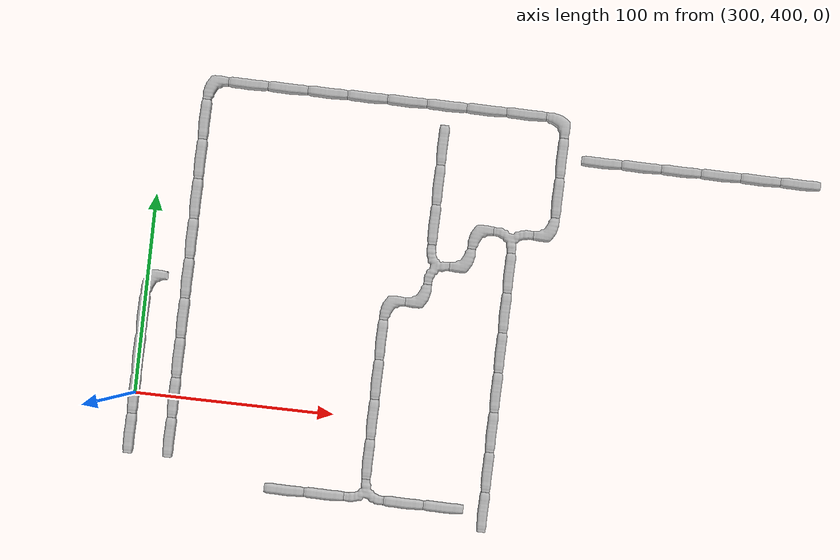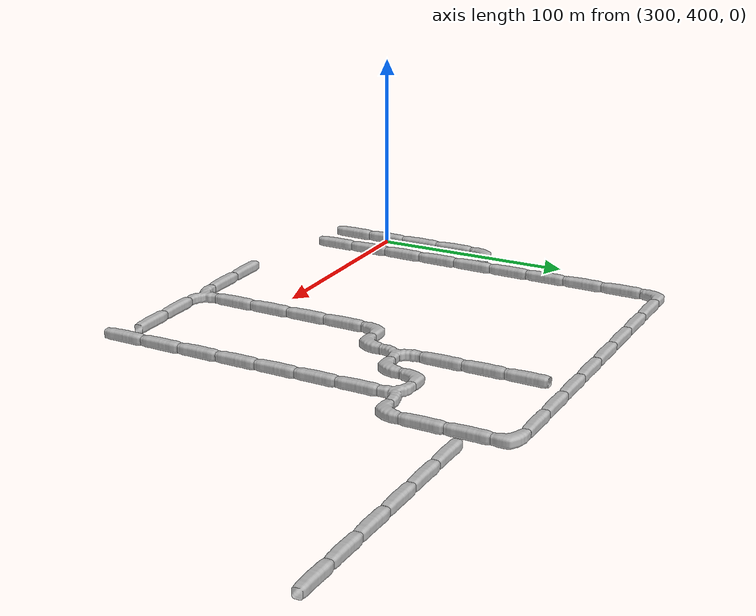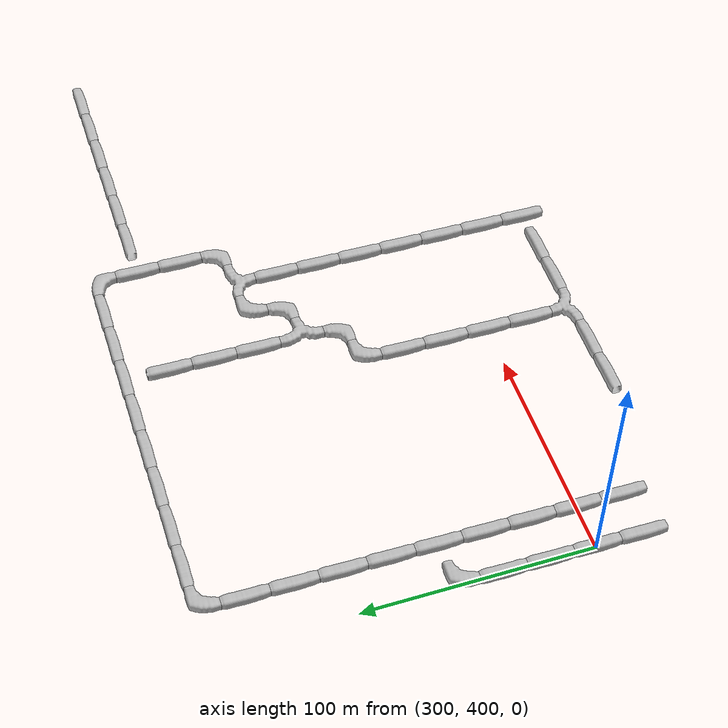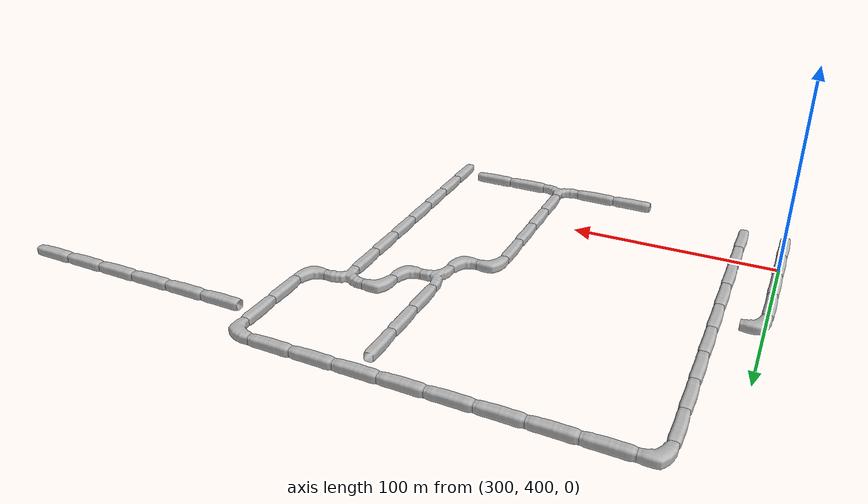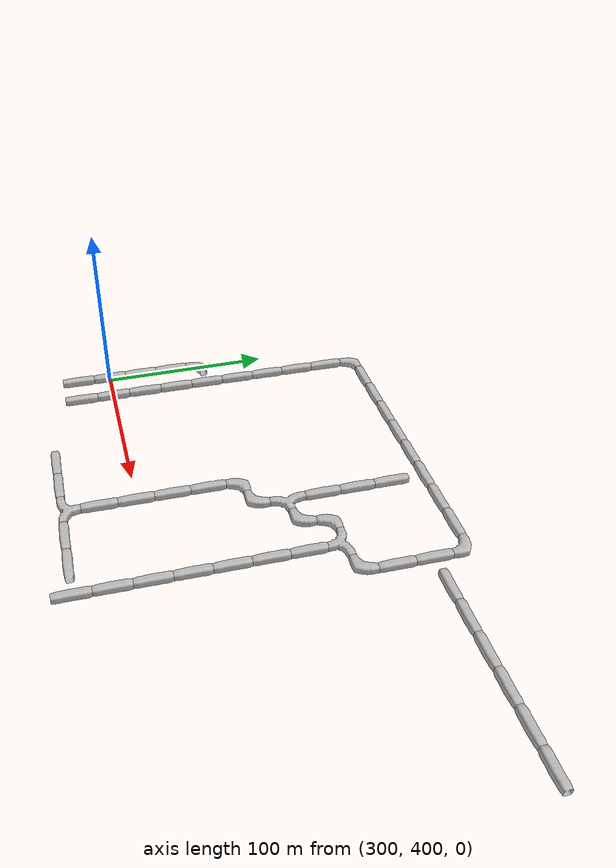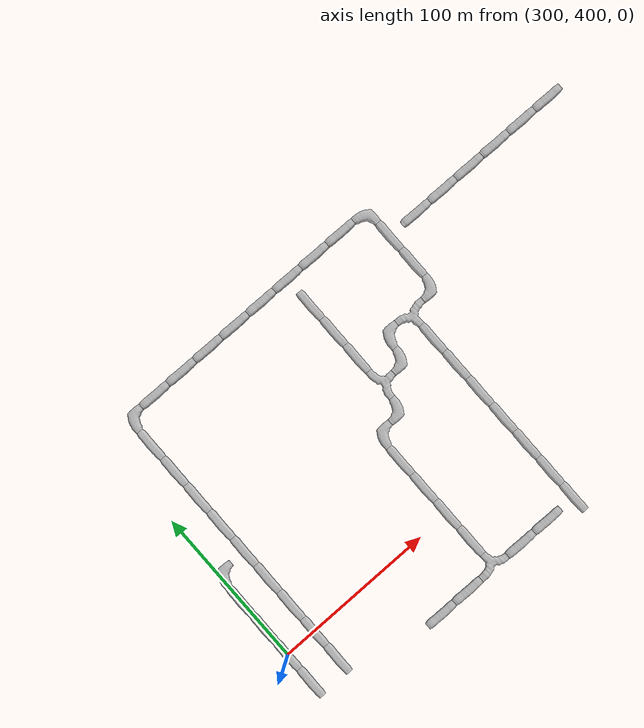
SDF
<sdf version="1.6">
 <world name="cave_32000_32">
  <include>
   <static>true</static>
   <name>cave_31_27</name>
   <pose>620 540 0 0 0 1.5707963267948966</pose>
   <uri>model://cave_straight_20m</uri>
  </include>
  <include>
   <static>true</static>
   <name>cave_30_27</name>
   <pose>600 540 0 0 0 1.5707963267948966</pose>
   <uri>model://cave_straight_20m</uri>
  </include>
  <include>
   <static>true</static>
   <name>cave_29_27</name>
   <pose>580 540 0 0 0 1.5707963267948966</pose>
   <uri>model://cave_straight_20m</uri>
  </include>
  <include>
   <static>true</static>
   <name>cave_28_27</name>
   <pose>560 540 0 0 0 1.5707963267948966</pose>
   <uri>model://cave_straight_20m</uri>
  </include>
  <include>
   <static>true</static>
   <name>cave_27_27</name>
   <pose>540 540 0 0 0 1.5707963267948966</pose>
   <uri>model://cave_straight_20m</uri>
  </include>
  <include>
   <static>true</static>
   <name>cave_26_27</name>
   <pose>520 540 0 0 0 1.5707963267948966</pose>
   <uri>model://cave_straight_20m</uri>
  </include>
  <include>
   <static>true</static>
   <name>cave_24_18</name>
   <pose>480 360 0 0 0 0.0</pose>
   <uri>model://cave_straight_20m</uri>
  </include>
  <include>
   <static>true</static>
   <name>cave_24_19</name>
   <pose>480 380 0 0 0 0.0</pose>
   <uri>model://cave_straight_20m</uri>
  </include>
  <include>
   <static>true</static>
   <name>cave_24_20</name>
   <pose>480 400 0 0 0 0.0</pose>
   <uri>model://cave_straight_20m</uri>
  </include>
  <include>
   <static>true</static>
   <name>cave_24_21</name>
   <pose>480 420 0 0 0 0.0</pose>
   <uri>model://cave_straight_20m</uri>
  </include>
  <include>
   <static>true</static>
   <name>cave_24_22</name>
   <pose>480 440 0 0 0 0.0</pose>
   <uri>model://cave_straight_20m</uri>
  </include>
  <include>
   <static>true</static>
   <name>cave_24_23</name>
   <pose>480 460 0 0 0 0.0</pose>
   <uri>model://cave_straight_20m</uri>
  </include>
  <include>
   <static>true</static>
   <name>cave_24_24</name>
   <pose>480 480 0 0 0 0.0</pose>
   <uri>model://cave_straight_20m</uri>
  </include>
  <include>
   <static>true</static>
   <name>cave_24_25</name>
   <pose>480 500 0 0 0 3.141592653589793</pose>
   <uri>model://cave_3way_20m</uri>
  </include>
  <include>
   <static>true</static>
   <name>cave_25_25</name>
   <pose>500 500 0 0 0 1.5707963267948966</pose>
   <uri>model://cave_L_20m</uri>
  </include>
  <include>
   <static>true</static>
   <name>cave_25_26</name>
   <pose>500 520 0 0 0 0.0</pose>
   <uri>model://cave_straight_20m</uri>
  </include>
  <include>
   <static>true</static>
   <name>cave_25_27</name>
   <pose>500 540 0 0 0 0.0</pose>
   <uri>model://cave_straight_20m</uri>
  </include>
  <include>
   <static>true</static>
   <name>cave_25_28</name>
   <pose>500 560 0 0 0 3.141592653589793</pose>
   <uri>model://cave_L_20m</uri>
  </include>
  <include>
   <static>true</static>
   <name>cave_24_28</name>
   <pose>480 560 0 0 0 1.5707963267948966</pose>
   <uri>model://cave_straight_20m</uri>
  </include>
  <include>
   <static>true</static>
   <name>cave_23_28</name>
   <pose>460 560 0 0 0 1.5707963267948966</pose>
   <uri>model://cave_straight_20m</uri>
  </include>
  <include>
   <static>true</static>
   <name>cave_22_28</name>
   <pose>440 560 0 0 0 1.5707963267948966</pose>
   <uri>model://cave_straight_20m</uri>
  </include>
  <include>
   <static>true</static>
   <name>cave_21_28</name>
   <pose>420 560 0 0 0 1.5707963267948966</pose>
   <uri>model://cave_straight_20m</uri>
  </include>
  <include>
   <static>true</static>
   <name>cave_20_28</name>
   <pose>400 560 0 0 0 1.5707963267948966</pose>
   <uri>model://cave_straight_20m</uri>
  </include>
  <include>
   <static>true</static>
   <name>cave_19_28</name>
   <pose>380 560 0 0 0 1.5707963267948966</pose>
   <uri>model://cave_straight_20m</uri>
  </include>
  <include>
   <static>true</static>
   <name>cave_18_28</name>
   <pose>360 560 0 0 0 1.5707963267948966</pose>
   <uri>model://cave_straight_20m</uri>
  </include>
  <include>
   <static>true</static>
   <name>cave_17_28</name>
   <pose>340 560 0 0 0 1.5707963267948966</pose>
   <uri>model://cave_straight_20m</uri>
  </include>
  <include>
   <static>true</static>
   <name>cave_16_28</name>
   <pose>320 560 0 0 0 -1.5707963267948966</pose>
   <uri>model://cave_L_20m</uri>
  </include>
  <include>
   <static>true</static>
   <name>cave_16_27</name>
   <pose>320 540 0 0 0 0.0</pose>
   <uri>model://cave_straight_20m</uri>
  </include>
  <include>
   <static>true</static>
   <name>cave_16_26</name>
   <pose>320 520 0 0 0 0.0</pose>
   <uri>model://cave_straight_20m</uri>
  </include>
  <include>
   <static>true</static>
   <name>cave_16_25</name>
   <pose>320 500 0 0 0 0.0</pose>
   <uri>model://cave_straight_20m</uri>
  </include>
  <include>
   <static>true</static>
   <name>cave_16_24</name>
   <pose>320 480 0 0 0 0.0</pose>
   <uri>model://cave_straight_20m</uri>
  </include>
  <include>
   <static>true</static>
   <name>cave_16_23</name>
   <pose>320 460 0 0 0 0.0</pose>
   <uri>model://cave_straight_20m</uri>
  </include>
  <include>
   <static>true</static>
   <name>cave_16_22</name>
   <pose>320 440 0 0 0 0.0</pose>
   <uri>model://cave_straight_20m</uri>
  </include>
  <include>
   <static>true</static>
   <name>cave_16_21</name>
   <pose>320 420 0 0 0 0.0</pose>
   <uri>model://cave_straight_20m</uri>
  </include>
  <include>
   <static>true</static>
   <name>cave_16_20</name>
   <pose>320 400 0 0 0 0.0</pose>
   <uri>model://cave_straight_20m</uri>
  </include>
  <include>
   <static>true</static>
   <name>cave_16_19</name>
   <pose>320 380 0 0 0 0.0</pose>
   <uri>model://cave_straight_20m</uri>
  </include>
  <include>
   <static>true</static>
   <name>cave_23_25</name>
   <pose>460 500 0 0 0 -1.5707963267948966</pose>
   <uri>model://cave_L_20m</uri>
  </include>
  <include>
   <static>true</static>
   <name>cave_23_24</name>
   <pose>460 480 0 0 0 1.5707963267948966</pose>
   <uri>model://cave_L_20m</uri>
  </include>
  <include>
   <static>true</static>
   <name>cave_22_24</name>
   <pose>440 480 0 0 0 -1.5707963267948966</pose>
   <uri>model://cave_3way_20m</uri>
  </include>
  <include>
   <static>true</static>
   <name>cave_22_23</name>
   <pose>440 460 0 0 0 1.5707963267948966</pose>
   <uri>model://cave_L_20m</uri>
  </include>
  <include>
   <static>true</static>
   <name>cave_21_23</name>
   <pose>420 460 0 0 0 -1.5707963267948966</pose>
   <uri>model://cave_L_20m</uri>
  </include>
  <include>
   <static>true</static>
   <name>cave_21_22</name>
   <pose>420 440 0 0 0 0.0</pose>
   <uri>model://cave_straight_20m</uri>
  </include>
  <include>
   <static>true</static>
   <name>cave_21_21</name>
   <pose>420 420 0 0 0 0.0</pose>
   <uri>model://cave_straight_20m</uri>
  </include>
  <include>
   <static>true</static>
   <name>cave_21_20</name>
   <pose>420 400 0 0 0 0.0</pose>
   <uri>model://cave_straight_20m</uri>
  </include>
  <include>
   <static>true</static>
   <name>cave_21_19</name>
   <pose>420 380 0 0 0 0.0</pose>
   <uri>model://cave_straight_20m</uri>
  </include>
  <include>
   <static>true</static>
   <name>cave_21_18</name>
   <pose>420 360 0 0 0 0.0</pose>
   <uri>model://cave_3way_20m</uri>
  </include>
  <include>
   <static>true</static>
   <name>cave_22_18</name>
   <pose>440 360 0 0 0 1.5707963267948966</pose>
   <uri>model://cave_straight_20m</uri>
  </include>
  <include>
   <static>true</static>
   <name>cave_23_18</name>
   <pose>460 360 0 0 0 1.5707963267948966</pose>
   <uri>model://cave_straight_20m</uri>
  </include>
  <include>
   <static>true</static>
   <name>cave_20_18</name>
   <pose>400 360 0 0 0 1.5707963267948966</pose>
   <uri>model://cave_straight_20m</uri>
  </include>
  <include>
   <static>true</static>
   <name>cave_19_18</name>
   <pose>380 360 0 0 0 1.5707963267948966</pose>
   <uri>model://cave_straight_20m</uri>
  </include>
  <include>
   <static>true</static>
   <name>cave_15_19</name>
   <pose>300 380 0 0 0 0.0</pose>
   <uri>model://cave_straight_20m</uri>
  </include>
  <include>
   <static>true</static>
   <name>cave_15_20</name>
   <pose>300 400 0 0 0 0.0</pose>
   <uri>model://cave_straight_20m</uri>
  </include>
  <include>
   <static>true</static>
   <name>cave_15_21</name>
   <pose>300 420 0 0 0 0.0</pose>
   <uri>model://cave_straight_20m</uri>
  </include>
  <include>
   <static>true</static>
   <name>cave_15_22</name>
   <pose>300 440 0 0 0 0.0</pose>
   <uri>model://cave_straight_20m</uri>
  </include>
  <include>
   <static>true</static>
   <name>cave_15_23</name>
   <pose>300 460 0 0 0 -1.5707963267948966</pose>
   <uri>model://cave_L_20m</uri>
  </include>
  <include>
   <static>true</static>
   <name>cave_22_25</name>
   <pose>440 500 0 0 0 0.0</pose>
   <uri>model://cave_straight_20m</uri>
  </include>
  <include>
   <static>true</static>
   <name>cave_22_26</name>
   <pose>440 520 0 0 0 0.0</pose>
   <uri>model://cave_straight_20m</uri>
  </include>
  <include>
   <static>true</static>
   <name>cave_22_27</name>
   <pose>440 540 0 0 0 0.0</pose>
   <uri>model://cave_straight_20m</uri>
  </include>
 </world>
</sdf>
